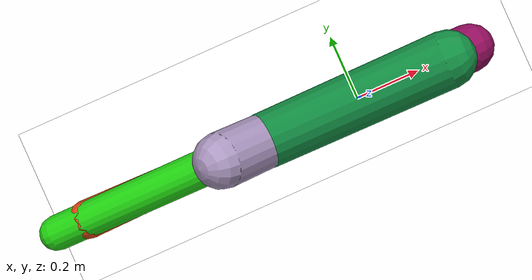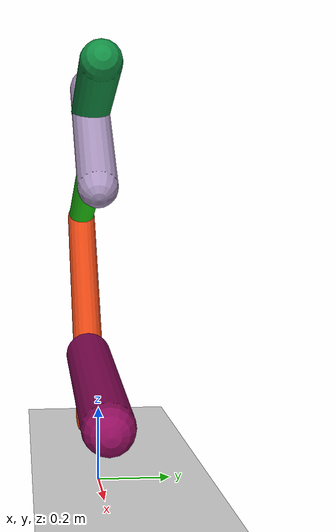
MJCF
<mujoco model="morphology">
  <option timestep="0.01"/>
  <default>
    <default class="/"/>
  </default>
  <asset>
    <texture name="texplane" type="2d" builtin="checker" rgb1="0.1 0.2 0.3" rgb2="0.2 0.3 0.4" width="300" height="300"/>
    <material name="MatPlane" class="/" texture="texplane" texrepeat="20 20" specular="1" shininess="1" reflectance="0.5"/>
  </asset>
  <worldbody>
    <light name="//unnamed_light_0" class="/" directional="true" pos="0 0 1.5" dir="0 0 -1.3" cutoff="1e+02" exponent="1" diffuse="1 1 1" specular="0.1 0.1 0.1"/>
    <geom name="ground" class="/" type="plane" size="15 15 0.5" material="MatPlane" rgba="1 1 1 1"/>
    <body name="body" pos="0 0 0.81">
      <geom name="geom0" class="/" type="capsule" contype="1" conaffinity="1" condim="3" size="0.057" rgba="0.66 0.58 0.74 1" friction="0.4 0.1 0.1" fromto="0 0 0 -0.37 0 0.31"/>
      <body name="body1" pos="-0.12 0 0.099">
        <geom name="geom1" class="/" type="capsule" contype="1" conaffinity="1" condim="3" size="0.042" rgba="0.13 0.82 0.068 1" friction="0.4 0.1 0.1" fromto="0 0 0 -0.7 0 -0.21"/>
        <body name="body2" pos="-0.62 0 -0.19">
          <geom name="geom2" class="/" type="capsule" contype="1" conaffinity="1" condim="3" size="0.046" rgba="0.88 0.27 0.074 1" friction="0.4 0.1 0.1" fromto="0 0 0 0.48 0 -0.61"/>
          <body name="body3" pos="0.34 0 -0.43">
            <geom name="geom3" class="/" type="capsule" contype="1" conaffinity="1" condim="3" size="0.069" rgba="0.56 0.046 0.36 1" friction="0.4 0.1 0.1" fromto="0 0 0 0.73 0 -0.074"/>
            <joint name="joint3" class="/" type="hinge" axis="0 1 0" limited="true" stiffness="20" range="-59 59" armature="0.1" damping="2"/>
          </body>
          <joint name="joint2" class="/" type="hinge" axis="0 1 0" limited="true" stiffness="20" range="-48 48" armature="0.1" damping="2"/>
        </body>
        <joint name="joint1" class="/" type="hinge" axis="0 1 0" limited="true" stiffness="20" range="-38 38" armature="0.1" damping="2"/>
      </body>
      <body name="body4" pos="-0.28 0 0.23">
        <geom name="geom4" class="/" type="capsule" contype="1" conaffinity="1" condim="3" size="0.058" rgba="0.068 0.55 0.26 1" friction="0.4 0.1 0.1" fromto="0 0 0 0.39 0 0.097"/>
        <joint name="joint4" class="/" type="hinge" axis="0 1 0" limited="true" stiffness="20" range="-31 31" armature="0.1" damping="2"/>
      </body>
      <joint name="rootx" class="/" type="slide" axis="1 0 0" limited="false" stiffness="0" armature="0" damping="0"/>
      <joint name="rootz" class="/" type="slide" axis="0 0 1" limited="false" stiffness="0" armature="0" damping="0"/>
      <joint name="rooty" class="/" type="hinge" axis="0 1 0" limited="false" stiffness="0" armature="0" damping="0"/>
    </body>
  </worldbody>
  <actuator>
    <motor name="motor3" class="/" ctrllimited="true" ctrlrange="-1 1" gear="1e+02" joint="joint3"/>
    <motor name="motor2" class="/" ctrllimited="true" ctrlrange="-1 1" gear="1.3e+02" joint="joint2"/>
    <motor name="motor1" class="/" ctrllimited="true" ctrlrange="-1 1" gear="1e+02" joint="joint1"/>
    <motor name="motor4" class="/" ctrllimited="true" ctrlrange="-1 1" gear="1.5e+02" joint="joint4"/>
  </actuator>
  <sensor>
    <subtreelinvel name="velocity" body="body"/>
  </sensor>
</mujoco>
